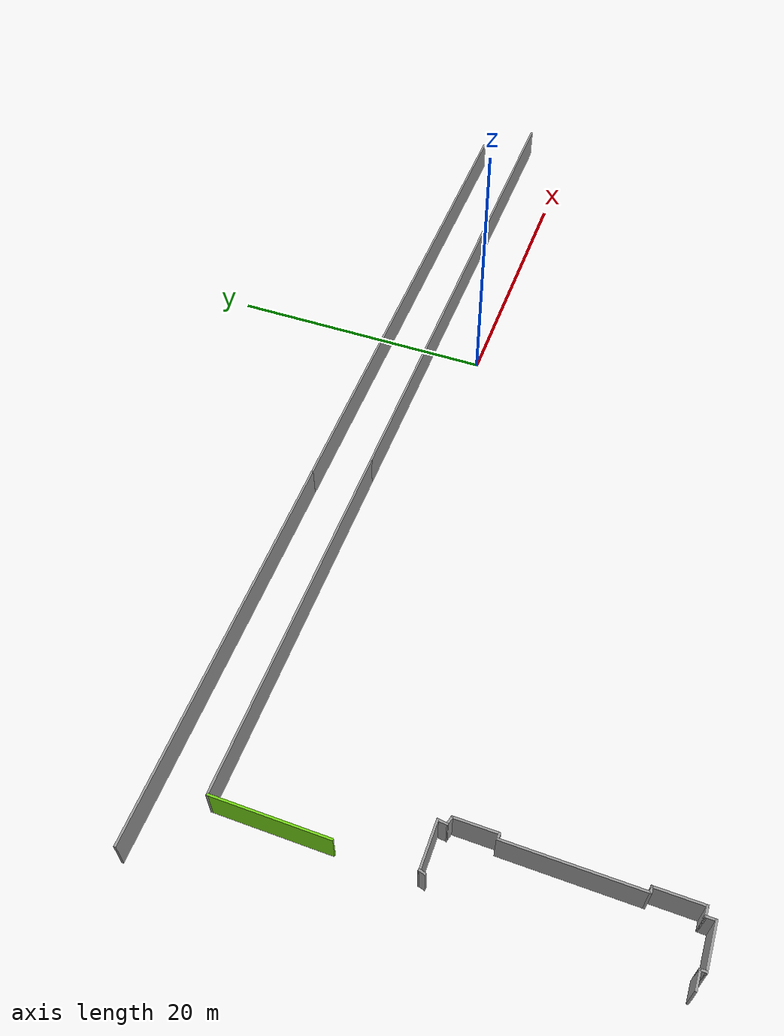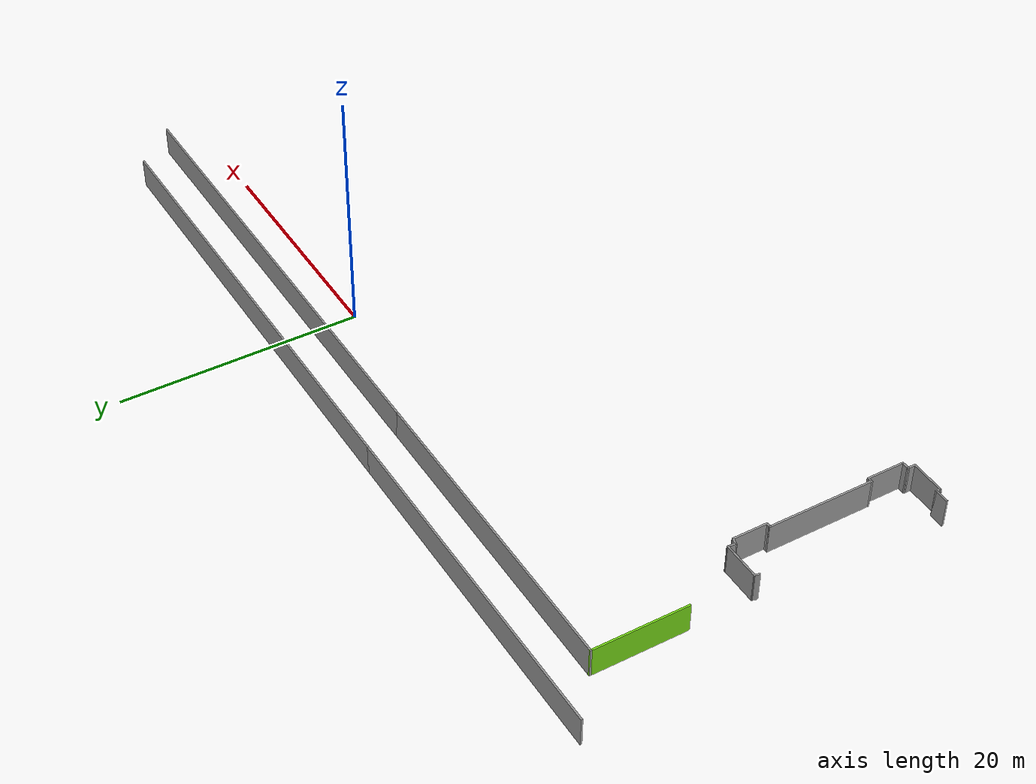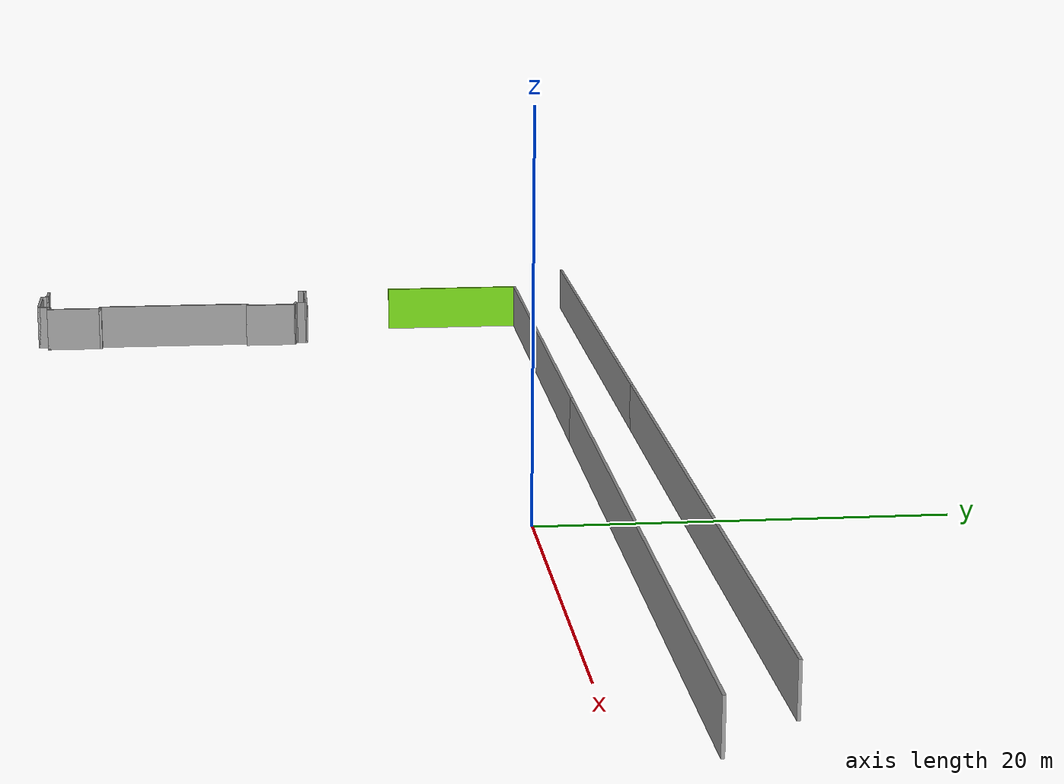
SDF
<sdf version="1.7">
 <model name="TD_n1">
  <pose>-6.74052 -9.30399 0 0 -0 0</pose>
  <link name="Wall_121">
   <collision name="Wall_121_Collision">
    <geometry><box><size>29 0.15 2.5</size></box></geometry>
    <pose>0 0 1.25 0 -0 0</pose>
   </collision>
   <visual name="Wall_121_Visual">
    <pose>0 0 1.25 0 -0 0</pose>
    <geometry><box><size>29 0.15 2.5</size></box></geometry>
    <material>
     <script><uri>file://media/materials/scripts/gazebo.material</uri><name>Gazebo/Grey</name></script>
     <ambient>1 1 1 1</ambient>
    </material>
    <meta><layer>0</layer></meta>
   </visual>
   <pose>-23.8398 16.5545 0 0 -0 0</pose>
  </link>
  <link name="Wall_123">
   <collision name="Wall_123_Collision">
    <geometry><box><size>26.75 0.15 2.5</size></box></geometry>
    <pose>0 0 1.25 0 -0 0</pose>
   </collision>
   <visual name="Wall_123_Visual">
    <pose>0 0 1.25 0 -0 0</pose>
    <geometry><box><size>26.75 0.15 2.5</size></box></geometry>
    <material>
     <script><uri>file://media/materials/scripts/gazebo.material</uri><name>Gazebo/Grey</name></script>
     <ambient>1 1 1 1</ambient>
    </material>
    <meta><layer>0</layer></meta>
   </visual>
   <pose>-20.4312 12.9924 0 0 -0 0</pose>
  </link>
  <link name="Wall_125">
   <collision name="Wall_125_Collision">
    <geometry><box><size>8 0.15 2.5</size></box></geometry>
    <pose>0 0 1.25 0 -0 0</pose>
   </collision>
   <visual name="Wall_125_Visual">
    <pose>0 0 1.25 0 -0 0</pose>
    <geometry><box><size>8 0.15 2.5</size></box></geometry>
    <material>
     <script><uri>file://media/materials/scripts/gazebo.material</uri><name>Gazebo/Grey</name></script>
     <ambient>0.45098 0.823529 0.0862745 1</ambient>
    </material>
    <meta><layer>0</layer></meta>
   </visual>
   <pose>-33.7312 9.06743 0 0 -0 -1.5708</pose>
  </link>
  <link name="Wall_15">
   <collision name="Wall_15_Collision">
    <geometry><box><size>1.25 0.15 2.5</size></box></geometry>
    <pose>0 0 1.25 0 -0 0</pose>
   </collision>
   <visual name="Wall_15_Visual">
    <pose>0 0 1.25 0 -0 0</pose>
    <geometry><box><size>1.25 0.15 2.5</size></box></geometry>
    <material>
     <script><uri>file://media/materials/scripts/gazebo.material</uri><name>Gazebo/Grey</name></script>
     <ambient>1 1 1 1</ambient>
    </material>
    <meta><layer>0</layer></meta>
   </visual>
   <pose>-34.1553 -15.9332 0 0 -0 0</pose>
  </link>
  <link name="Wall_16">
   <collision name="Wall_16_Collision">
    <geometry><box><size>0.5 0.15 2.5</size></box></geometry>
    <pose>0 0 1.25 0 -0 0</pose>
   </collision>
   <visual name="Wall_16_Visual">
    <pose>0 0 1.25 0 -0 0</pose>
    <geometry><box><size>0.5 0.15 2.5</size></box></geometry>
    <material>
     <script><uri>file://media/materials/scripts/gazebo.material</uri><name>Gazebo/Grey</name></script>
     <ambient>1 1 1 1</ambient>
    </material>
    <meta><layer>0</layer></meta>
   </visual>
   <pose>-33.6053 -16.1082 0 0 -0 -1.5708</pose>
  </link>
  <link name="Wall_17">
   <collision name="Wall_17_Collision">
    <geometry><box><size>3 0.15 2.5</size></box></geometry>
    <pose>0 0 1.25 0 -0 0</pose>
   </collision>
   <visual name="Wall_17_Visual">
    <pose>0 0 1.25 0 -0 0</pose>
    <geometry><box><size>3 0.15 2.5</size></box></geometry>
    <material>
     <script><uri>file://media/materials/scripts/gazebo.material</uri><name>Gazebo/Grey</name></script>
     <ambient>1 1 1 1</ambient>
    </material>
    <meta><layer>0</layer></meta>
   </visual>
   <pose>-32.1803 -16.2832 0 0 -0 0</pose>
  </link>
  <link name="Wall_18">
   <collision name="Wall_18_Collision">
    <geometry><box><size>0.75 0.15 2.5</size></box></geometry>
    <pose>0 0 1.25 0 -0 0</pose>
   </collision>
   <visual name="Wall_18_Visual">
    <pose>0 0 1.25 0 -0 0</pose>
    <geometry><box><size>0.75 0.15 2.5</size></box></geometry>
    <material>
     <script><uri>file://media/materials/scripts/gazebo.material</uri><name>Gazebo/Grey</name></script>
     <ambient>1 1 1 1</ambient>
    </material>
    <meta><layer>0</layer></meta>
   </visual>
   <pose>-30.7553 -15.9832 0 0 -0 1.5708</pose>
  </link>
  <link name="Wall_19">
   <collision name="Wall_19_Collision">
    <geometry><box><size>0.75 0.15 2.5</size></box></geometry>
    <pose>0 0 1.25 0 -0 0</pose>
   </collision>
   <visual name="Wall_19_Visual">
    <pose>0 0 1.25 0 -0 0</pose>
    <geometry><box><size>0.75 0.15 2.5</size></box></geometry>
    <material>
     <script><uri>file://media/materials/scripts/gazebo.material</uri><name>Gazebo/Grey</name></script>
     <ambient>1 1 1 1</ambient>
    </material>
    <meta><layer>0</layer></meta>
   </visual>
   <pose>-30.4553 -15.6832 0 0 -0 0</pose>
  </link>
  <link name="Wall_20">
   <collision name="Wall_20_Collision">
    <geometry><box><size>3.25 0.15 2.5</size></box></geometry>
    <pose>0 0 1.25 0 -0 0</pose>
   </collision>
   <visual name="Wall_20_Visual">
    <pose>0 0 1.25 0 -0 0</pose>
    <geometry><box><size>3.25 0.15 2.5</size></box></geometry>
    <material>
     <script><uri>file://media/materials/scripts/gazebo.material</uri><name>Gazebo/Grey</name></script>
     <ambient>1 1 1 1</ambient>
    </material>
    <meta><layer>0</layer></meta>
   </visual>
   <pose>-30.1553 -14.1332 0 0 -0 1.5708</pose>
  </link>
  <link name="Wall_21">
   <collision name="Wall_21_Collision">
    <geometry><box><size>0.5 0.15 2.5</size></box></geometry>
    <pose>0 0 1.25 0 -0 0</pose>
   </collision>
   <visual name="Wall_21_Visual">
    <pose>0 0 1.25 0 -0 0</pose>
    <geometry><box><size>0.5 0.15 2.5</size></box></geometry>
    <material>
     <script><uri>file://media/materials/scripts/gazebo.material</uri><name>Gazebo/Grey</name></script>
     <ambient>1 1 1 1</ambient>
    </material>
    <meta><layer>0</layer></meta>
   </visual>
   <pose>-30.3303 -12.5832 0 0 -0 3.14159</pose>
  </link>
  <link name="Wall_24">
   <collision name="Wall_24_Collision">
    <geometry><box><size>9 0.15 2.5</size></box></geometry>
    <pose>0 0 1.25 0 -0 0</pose>
   </collision>
   <visual name="Wall_24_Visual">
    <pose>0 0 1.25 0 -0 0</pose>
    <geometry><box><size>9 0.15 2.5</size></box></geometry>
    <material>
     <script><uri>file://media/materials/scripts/gazebo.material</uri><name>Gazebo/Grey</name></script>
     <ambient>1 1 1 1</ambient>
    </material>
    <meta><layer>0</layer></meta>
   </visual>
   <pose>-30.5053 -8.15816 0 0 -0 1.5708</pose>
  </link>
  <link name="Wall_244">
   <collision name="Wall_244_Collision">
    <geometry><box><size>40.75 0.15 2.5</size></box></geometry>
    <pose>0 0 1.25 0 -0 0</pose>
   </collision>
   <visual name="Wall_244_Visual">
    <pose>0 0 1.25 0 -0 0</pose>
    <geometry><box><size>40.75 0.15 2.5</size></box></geometry>
    <material>
     <script><uri>file://media/materials/scripts/gazebo.material</uri><name>Gazebo/Grey</name></script>
     <ambient>1 1 1 1</ambient>
    </material>
    <meta><layer>0</layer></meta>
   </visual>
   <pose>10.8852 16.5545 0 0 -0 0</pose>
  </link>
  <link name="Wall_246">
   <collision name="Wall_246_Collision">
    <geometry><box><size>41.75 0.15 2.5</size></box></geometry>
    <pose>0 0 1.25 0 -0 0</pose>
   </collision>
   <visual name="Wall_246_Visual">
    <pose>0 0 1.25 0 -0 0</pose>
    <geometry><box><size>41.75 0.15 2.5</size></box></geometry>
    <material>
     <script><uri>file://media/materials/scripts/gazebo.material</uri><name>Gazebo/Grey</name></script>
     <ambient>1 1 1 1</ambient>
    </material>
    <meta><layer>0</layer></meta>
   </visual>
   <pose>13.6688 12.9924 0 0 -0 0</pose>
  </link>
  <link name="Wall_25">
   <collision name="Wall_25_Collision">
    <geometry><box><size>0.5 0.15 2.5</size></box></geometry>
    <pose>0 0 1.25 0 -0 0</pose>
   </collision>
   <visual name="Wall_25_Visual">
    <pose>0 0 1.25 0 -0 0</pose>
    <geometry><box><size>0.5 0.15 2.5</size></box></geometry>
    <material>
     <script><uri>file://media/materials/scripts/gazebo.material</uri><name>Gazebo/Grey</name></script>
     <ambient>1 1 1 1</ambient>
    </material>
    <meta><layer>0</layer></meta>
   </visual>
   <pose>-30.3303 -3.73316 0 0 -0 0</pose>
  </link>
  <link name="Wall_27">
   <collision name="Wall_27_Collision">
    <geometry><box><size>3 0.15 2.5</size></box></geometry>
    <pose>0 0 1.25 0 -0 0</pose>
   </collision>
   <visual name="Wall_27_Visual">
    <pose>0 0 1.25 0 -0 0</pose>
    <geometry><box><size>3 0.15 2.5</size></box></geometry>
    <material>
     <script><uri>file://media/materials/scripts/gazebo.material</uri><name>Gazebo/Grey</name></script>
     <ambient>1 1 1 1</ambient>
    </material>
    <meta><layer>0</layer></meta>
   </visual>
   <pose>-30.1553 -2.30816 0 0 -0 1.5708</pose>
  </link>
  <link name="Wall_29">
   <collision name="Wall_29_Collision">
    <geometry><box><size>0.66664 0.15 2.5</size></box></geometry>
    <pose>0 0 1.25 0 -0 0</pose>
   </collision>
   <visual name="Wall_29_Visual">
    <pose>0 0 1.25 0 -0 0</pose>
    <geometry><box><size>0.66664 0.15 2.5</size></box></geometry>
    <material>
     <script><uri>file://media/materials/scripts/gazebo.material</uri><name>Gazebo/Grey</name></script>
     <ambient>1 1 1 1</ambient>
    </material>
    <meta><layer>0</layer></meta>
   </visual>
   <pose>-30.4042 -0.814212 0 0 -0 -0.270172</pose>
  </link>
  <link name="Wall_37">
   <collision name="Wall_37_Collision">
    <geometry><box><size>0.5 0.15 2.5</size></box></geometry>
    <pose>0 0 1.25 0 -0 0</pose>
   </collision>
   <visual name="Wall_37_Visual">
    <pose>0 0 1.25 0 -0 0</pose>
    <geometry><box><size>0.5 0.15 2.5</size></box></geometry>
    <material>
     <script><uri>file://media/materials/scripts/gazebo.material</uri><name>Gazebo/Grey</name></script>
     <ambient>1 1 1 1</ambient>
    </material>
    <meta><layer>0</layer></meta>
   </visual>
   <pose>-33.7355 -0.312812 0 0 -0 1.309</pose>
  </link>
  <link name="Wall_38">
   <collision name="Wall_38_Collision">
    <geometry><box><size>3.25 0.15 2.5</size></box></geometry>
    <pose>0 0 1.25 0 -0 0</pose>
   </collision>
   <visual name="Wall_38_Visual">
    <pose>0 0 1.25 0 -0 0</pose>
    <geometry><box><size>3.25 0.15 2.5</size></box></geometry>
    <material>
     <script><uri>file://media/materials/scripts/gazebo.material</uri><name>Gazebo/Grey</name></script>
     <ambient>1 1 1 1</ambient>
    </material>
    <meta><layer>0</layer></meta>
   </visual>
   <pose>-32.1402 -0.143775 0 0 -0 0</pose>
  </link>
  <link name="Wall_39">
   <collision name="Wall_39_Collision">
    <geometry><box><size>0.754778 0.15 2.5</size></box></geometry>
    <pose>0 0 1.25 0 -0 0</pose>
   </collision>
   <visual name="Wall_39_Visual">
    <pose>0 0 1.25 0 -0 0</pose>
    <geometry><box><size>0.754778 0.15 2.5</size></box></geometry>
    <material>
     <script><uri>file://media/materials/scripts/gazebo.material</uri><name>Gazebo/Grey</name></script>
     <ambient>1 1 1 1</ambient>
    </material>
    <meta><layer>0</layer></meta>
   </visual>
   <pose>-30.6217 -0.444521 0 0 -0 -1.67508</pose>
  </link>
  <static>1</static>
 </model>
</sdf>
